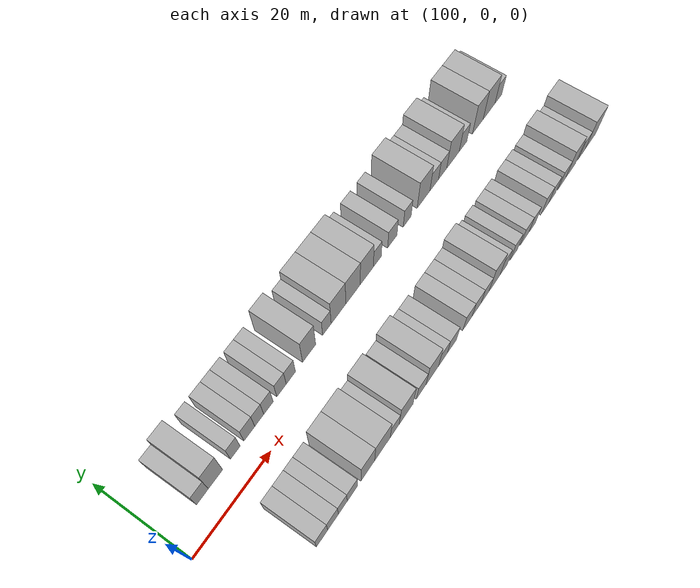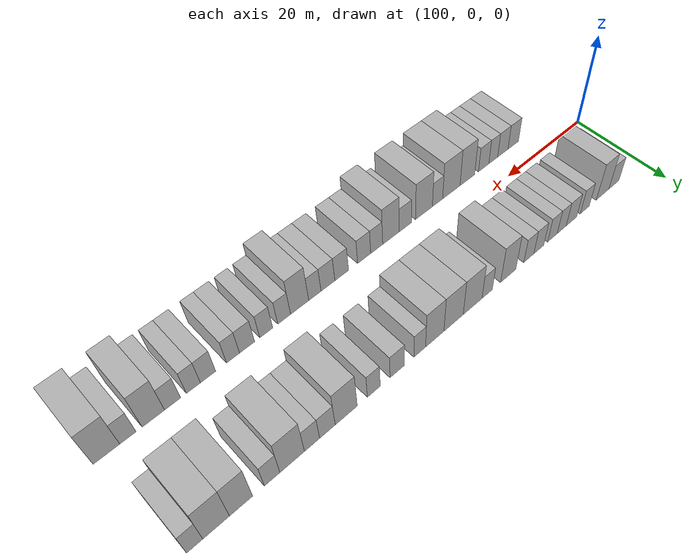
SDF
<sdf version="1.6">
 <world name="default">
  <model name="building_26">
   <static>1</static>
   <pose>108.1877 9.5000 0 0.000000 0.000000 1.570796</pose>
   <link name="link">
    <pose>0 0 3.00 0 0 0</pose>
    <collision name="collision"><geometry><box><size>10.0000 2.9506 6.0000</size></box></geometry></collision>
    <visual name="visual">
     <cast_shadows>0</cast_shadows>
     <geometry><box><size>10.0000 2.9506 6.0000</size></box></geometry>
     <material>
      <script>
       <uri>model://HANNAS_wall/materials/scripts</uri>
       <uri>model://HANNAS_wall/materials/textures</uri>
       <name>vrc/HANNAS_wall</name>
      </script>
     </material>
    </visual>
   </link>
  </model>
  <model name="building_27">
   <static>1</static>
   <pose>111.4786 9.5000 0 0.000000 0.000000 1.570796</pose>
   <link name="link">
    <pose>0 0 4.50 0 0 0</pose>
    <collision name="collision"><geometry><box><size>10.0000 3.6313 9.0000</size></box></geometry></collision>
    <visual name="visual">
     <cast_shadows>0</cast_shadows>
     <geometry><box><size>10.0000 3.6313 9.0000</size></box></geometry>
     <material>
      <script>
       <uri>model://HANNAS_wall/materials/scripts</uri>
       <uri>model://HANNAS_wall/materials/textures</uri>
       <name>vrc/HANNAS_wall</name>
      </script>
     </material>
    </visual>
   </link>
  </model>
  <model name="building_28">
   <static>1</static>
   <pose>116.5506 9.5000 0 0.000000 0.000000 1.570796</pose>
   <link name="link">
    <pose>0 0 3.00 0 0 0</pose>
    <collision name="collision"><geometry><box><size>10.0000 2.5127 6.0000</size></box></geometry></collision>
    <visual name="visual">
     <cast_shadows>0</cast_shadows>
     <geometry><box><size>10.0000 2.5127 6.0000</size></box></geometry>
     <material>
      <script>
       <uri>model://HANNAS_wall/materials/scripts</uri>
       <uri>model://HANNAS_wall/materials/textures</uri>
       <name>vrc/HANNAS_wall</name>
      </script>
     </material>
    </visual>
   </link>
  </model>
  <model name="building_29">
   <static>1</static>
   <pose>120.2438 9.5000 0 0.000000 0.000000 1.570796</pose>
   <link name="link">
    <pose>0 0 3.00 0 0 0</pose>
    <collision name="collision"><geometry><box><size>10.0000 2.8737 6.0000</size></box></geometry></collision>
    <visual name="visual">
     <cast_shadows>0</cast_shadows>
     <geometry><box><size>10.0000 2.8737 6.0000</size></box></geometry>
     <material>
      <script>
       <uri>model://HANNAS_wall/materials/scripts</uri>
       <uri>model://HANNAS_wall/materials/textures</uri>
       <name>vrc/HANNAS_wall</name>
      </script>
     </material>
    </visual>
   </link>
  </model>
  <model name="building_30">
   <static>1</static>
   <pose>122.8821 9.5000 0 0.000000 0.000000 1.570796</pose>
   <link name="link">
    <pose>0 0 3.00 0 0 0</pose>
    <collision name="collision"><geometry><box><size>10.0000 2.4031 6.0000</size></box></geometry></collision>
    <visual name="visual">
     <cast_shadows>0</cast_shadows>
     <geometry><box><size>10.0000 2.4031 6.0000</size></box></geometry>
     <material>
      <script>
       <uri>model://HANNAS_wall/materials/scripts</uri>
       <uri>model://HANNAS_wall/materials/textures</uri>
       <name>vrc/HANNAS_wall</name>
      </script>
     </material>
    </visual>
   </link>
  </model>
  <model name="building_31">
   <static>1</static>
   <pose>125.3592 9.5000 0 0.000000 0.000000 1.570796</pose>
   <link name="link">
    <pose>0 0 3.00 0 0 0</pose>
    <collision name="collision"><geometry><box><size>10.0000 2.5511 6.0000</size></box></geometry></collision>
    <visual name="visual">
     <cast_shadows>0</cast_shadows>
     <geometry><box><size>10.0000 2.5511 6.0000</size></box></geometry>
     <material>
      <script>
       <uri>model://HANNAS_wall/materials/scripts</uri>
       <uri>model://HANNAS_wall/materials/textures</uri>
       <name>vrc/HANNAS_wall</name>
      </script>
     </material>
    </visual>
   </link>
  </model>
  <model name="building_32">
   <static>1</static>
   <pose>128.9268 9.5000 0 0.000000 0.000000 1.570796</pose>
   <link name="link">
    <pose>0 0 3.00 0 0 0</pose>
    <collision name="collision"><geometry><box><size>10.0000 2.5841 6.0000</size></box></geometry></collision>
    <visual name="visual">
     <cast_shadows>0</cast_shadows>
     <geometry><box><size>10.0000 2.5841 6.0000</size></box></geometry>
     <material>
      <script>
       <uri>model://HANNAS_wall/materials/scripts</uri>
       <uri>model://HANNAS_wall/materials/textures</uri>
       <name>vrc/HANNAS_wall</name>
      </script>
     </material>
    </visual>
   </link>
  </model>
  <model name="building_33">
   <static>1</static>
   <pose>131.5073 9.5000 0 0.000000 0.000000 1.570796</pose>
   <link name="link">
    <pose>0 0 3.00 0 0 0</pose>
    <collision name="collision"><geometry><box><size>10.0000 2.5769 6.0000</size></box></geometry></collision>
    <visual name="visual">
     <cast_shadows>0</cast_shadows>
     <geometry><box><size>10.0000 2.5769 6.0000</size></box></geometry>
     <material>
      <script>
       <uri>model://HANNAS_wall/materials/scripts</uri>
       <uri>model://HANNAS_wall/materials/textures</uri>
       <name>vrc/HANNAS_wall</name>
      </script>
     </material>
    </visual>
   </link>
  </model>
  <model name="building_34">
   <static>1</static>
   <pose>136.6726 9.5000 0 0.000000 0.000000 1.570796</pose>
   <link name="link">
    <pose>0 0 4.50 0 0 0</pose>
    <collision name="collision"><geometry><box><size>10.0000 3.7537 9.0000</size></box></geometry></collision>
    <visual name="visual">
     <cast_shadows>0</cast_shadows>
     <geometry><box><size>10.0000 3.7537 9.0000</size></box></geometry>
     <material>
      <script>
       <uri>model://HANNAS_wall/materials/scripts</uri>
       <uri>model://HANNAS_wall/materials/textures</uri>
       <name>vrc/HANNAS_wall</name>
      </script>
     </material>
    </visual>
   </link>
  </model>
  <model name="building_35">
   <static>1</static>
   <pose>141.7903 9.5000 0 0.000000 0.000000 1.570796</pose>
   <link name="link">
    <pose>0 0 3.00 0 0 0</pose>
    <collision name="collision"><geometry><box><size>10.0000 2.4817 6.0000</size></box></geometry></collision>
    <visual name="visual">
     <cast_shadows>0</cast_shadows>
     <geometry><box><size>10.0000 2.4817 6.0000</size></box></geometry>
     <material>
      <script>
       <uri>model://HANNAS_wall/materials/scripts</uri>
       <uri>model://HANNAS_wall/materials/textures</uri>
       <name>vrc/HANNAS_wall</name>
      </script>
     </material>
    </visual>
   </link>
  </model>
  <model name="building_36">
   <static>1</static>
   <pose>145.2132 9.5000 0 0.000000 0.000000 1.570796</pose>
   <link name="link">
    <pose>0 0 4.50 0 0 0</pose>
    <collision name="collision"><geometry><box><size>10.0000 4.3640 9.0000</size></box></geometry></collision>
    <visual name="visual">
     <cast_shadows>0</cast_shadows>
     <geometry><box><size>10.0000 4.3640 9.0000</size></box></geometry>
     <material>
      <script>
       <uri>model://HANNAS_wall/materials/scripts</uri>
       <uri>model://HANNAS_wall/materials/textures</uri>
       <name>vrc/HANNAS_wall</name>
      </script>
     </material>
    </visual>
   </link>
  </model>
  <model name="building_37">
   <static>1</static>
   <pose>149.5837 9.5000 0 0.000000 0.000000 1.570796</pose>
   <link name="link">
    <pose>0 0 4.50 0 0 0</pose>
    <collision name="collision"><geometry><box><size>10.0000 4.3769 9.0000</size></box></geometry></collision>
    <visual name="visual">
     <cast_shadows>0</cast_shadows>
     <geometry><box><size>10.0000 4.3769 9.0000</size></box></geometry>
     <material>
      <script>
       <uri>model://HANNAS_wall/materials/scripts</uri>
       <uri>model://HANNAS_wall/materials/textures</uri>
       <name>vrc/HANNAS_wall</name>
      </script>
     </material>
    </visual>
   </link>
  </model>
  <model name="building_38">
   <static>1</static>
   <pose>153.7877 9.5000 0 0.000000 0.000000 1.570796</pose>
   <link name="link">
    <pose>0 0 4.50 0 0 0</pose>
    <collision name="collision"><geometry><box><size>10.0000 4.0313 9.0000</size></box></geometry></collision>
    <visual name="visual">
     <cast_shadows>0</cast_shadows>
     <geometry><box><size>10.0000 4.0313 9.0000</size></box></geometry>
     <material>
      <script>
       <uri>model://HANNAS_wall/materials/scripts</uri>
       <uri>model://HANNAS_wall/materials/textures</uri>
       <name>vrc/HANNAS_wall</name>
      </script>
     </material>
    </visual>
   </link>
  </model>
  <model name="building_39">
   <static>1</static>
   <pose>157.0514 9.5000 0 0.000000 0.000000 1.570796</pose>
   <link name="link">
    <pose>0 0 3.00 0 0 0</pose>
    <collision name="collision"><geometry><box><size>10.0000 2.4960 6.0000</size></box></geometry></collision>
    <visual name="visual">
     <cast_shadows>0</cast_shadows>
     <geometry><box><size>10.0000 2.4960 6.0000</size></box></geometry>
     <material>
      <script>
       <uri>model://HANNAS_wall/materials/scripts</uri>
       <uri>model://HANNAS_wall/materials/textures</uri>
       <name>vrc/HANNAS_wall</name>
      </script>
     </material>
    </visual>
   </link>
  </model>
  <model name="building_40">
   <static>1</static>
   <pose>161.7972 9.5000 0 0.000000 0.000000 1.570796</pose>
   <link name="link">
    <pose>0 0 3.00 0 0 0</pose>
    <collision name="collision"><geometry><box><size>10.0000 2.9956 6.0000</size></box></geometry></collision>
    <visual name="visual">
     <cast_shadows>0</cast_shadows>
     <geometry><box><size>10.0000 2.9956 6.0000</size></box></geometry>
     <material>
      <script>
       <uri>model://HANNAS_wall/materials/scripts</uri>
       <uri>model://HANNAS_wall/materials/textures</uri>
       <name>vrc/HANNAS_wall</name>
      </script>
     </material>
    </visual>
   </link>
  </model>
  <model name="building_41">
   <static>1</static>
   <pose>166.5899 9.5000 0 0.000000 0.000000 1.570796</pose>
   <link name="link">
    <pose>0 0 3.00 0 0 0</pose>
    <collision name="collision"><geometry><box><size>10.0000 2.5899 6.0000</size></box></geometry></collision>
    <visual name="visual">
     <cast_shadows>0</cast_shadows>
     <geometry><box><size>10.0000 2.5899 6.0000</size></box></geometry>
     <material>
      <script>
       <uri>model://HANNAS_wall/materials/scripts</uri>
       <uri>model://HANNAS_wall/materials/textures</uri>
       <name>vrc/HANNAS_wall</name>
      </script>
     </material>
    </visual>
   </link>
  </model>
  <model name="building_42">
   <static>1</static>
   <pose>172.0079 9.5000 0 0.000000 0.000000 1.570796</pose>
   <link name="link">
    <pose>0 0 4.50 0 0 0</pose>
    <collision name="collision"><geometry><box><size>10.0000 4.2462 9.0000</size></box></geometry></collision>
    <visual name="visual">
     <cast_shadows>0</cast_shadows>
     <geometry><box><size>10.0000 4.2462 9.0000</size></box></geometry>
     <material>
      <script>
       <uri>model://HANNAS_wall/materials/scripts</uri>
       <uri>model://HANNAS_wall/materials/textures</uri>
       <name>vrc/HANNAS_wall</name>
      </script>
     </material>
    </visual>
   </link>
  </model>
  <model name="building_43">
   <static>1</static>
   <pose>175.5984 9.5000 0 0.000000 0.000000 1.570796</pose>
   <link name="link">
    <pose>0 0 3.00 0 0 0</pose>
    <collision name="collision"><geometry><box><size>10.0000 2.9347 6.0000</size></box></geometry></collision>
    <visual name="visual">
     <cast_shadows>0</cast_shadows>
     <geometry><box><size>10.0000 2.9347 6.0000</size></box></geometry>
     <material>
      <script>
       <uri>model://HANNAS_wall/materials/scripts</uri>
       <uri>model://HANNAS_wall/materials/textures</uri>
       <name>vrc/HANNAS_wall</name>
      </script>
     </material>
    </visual>
   </link>
  </model>
  <model name="building_44">
   <static>1</static>
   <pose>178.4628 9.5000 0 0.000000 0.000000 1.570796</pose>
   <link name="link">
    <pose>0 0 3.00 0 0 0</pose>
    <collision name="collision"><geometry><box><size>10.0000 2.7942 6.0000</size></box></geometry></collision>
    <visual name="visual">
     <cast_shadows>0</cast_shadows>
     <geometry><box><size>10.0000 2.7942 6.0000</size></box></geometry>
     <material>
      <script>
       <uri>model://HANNAS_wall/materials/scripts</uri>
       <uri>model://HANNAS_wall/materials/textures</uri>
       <name>vrc/HANNAS_wall</name>
      </script>
     </material>
    </visual>
   </link>
  </model>
  <model name="building_45">
   <static>1</static>
   <pose>182.0575 9.5000 0 0.000000 0.000000 1.570796</pose>
   <link name="link">
    <pose>0 0 4.50 0 0 0</pose>
    <collision name="collision"><geometry><box><size>10.0000 4.3950 9.0000</size></box></geometry></collision>
    <visual name="visual">
     <cast_shadows>0</cast_shadows>
     <geometry><box><size>10.0000 4.3950 9.0000</size></box></geometry>
     <material>
      <script>
       <uri>model://HANNAS_wall/materials/scripts</uri>
       <uri>model://HANNAS_wall/materials/textures</uri>
       <name>vrc/HANNAS_wall</name>
      </script>
     </material>
    </visual>
   </link>
  </model>
  <model name="building_46">
   <static>1</static>
   <pose>185.6073 9.5000 0 0.000000 0.000000 1.570796</pose>
   <link name="link">
    <pose>0 0 3.00 0 0 0</pose>
    <collision name="collision"><geometry><box><size>10.0000 2.7046 6.0000</size></box></geometry></collision>
    <visual name="visual">
     <cast_shadows>0</cast_shadows>
     <geometry><box><size>10.0000 2.7046 6.0000</size></box></geometry>
     <material>
      <script>
       <uri>model://HANNAS_wall/materials/scripts</uri>
       <uri>model://HANNAS_wall/materials/textures</uri>
       <name>vrc/HANNAS_wall</name>
      </script>
     </material>
    </visual>
   </link>
  </model>
  <model name="building_47">
   <static>1</static>
   <pose>190.8958 9.5000 0 0.000000 0.000000 1.570796</pose>
   <link name="link">
    <pose>0 0 4.50 0 0 0</pose>
    <collision name="collision"><geometry><box><size>10.0000 3.8725 9.0000</size></box></geometry></collision>
    <visual name="visual">
     <cast_shadows>0</cast_shadows>
     <geometry><box><size>10.0000 3.8725 9.0000</size></box></geometry>
     <material>
      <script>
       <uri>model://HANNAS_wall/materials/scripts</uri>
       <uri>model://HANNAS_wall/materials/textures</uri>
       <name>vrc/HANNAS_wall</name>
      </script>
     </material>
    </visual>
   </link>
  </model>
  <model name="building_48">
   <static>1</static>
   <pose>194.9881 9.5000 0 0.000000 0.000000 1.570796</pose>
   <link name="link">
    <pose>0 0 4.50 0 0 0</pose>
    <collision name="collision"><geometry><box><size>10.0000 4.3121 9.0000</size></box></geometry></collision>
    <visual name="visual">
     <cast_shadows>0</cast_shadows>
     <geometry><box><size>10.0000 4.3121 9.0000</size></box></geometry>
     <material>
      <script>
       <uri>model://HANNAS_wall/materials/scripts</uri>
       <uri>model://HANNAS_wall/materials/textures</uri>
       <name>vrc/HANNAS_wall</name>
      </script>
     </material>
    </visual>
   </link>
  </model>
  <model name="building_49">
   <static>1</static>
   <pose>198.4301 9.5000 0 0.000000 0.000000 1.570796</pose>
   <link name="link">
    <pose>0 0 3.00 0 0 0</pose>
    <collision name="collision"><geometry><box><size>10.0000 2.5718 6.0000</size></box></geometry></collision>
    <visual name="visual">
     <cast_shadows>0</cast_shadows>
     <geometry><box><size>10.0000 2.5718 6.0000</size></box></geometry>
     <material>
      <script>
       <uri>model://HANNAS_wall/materials/scripts</uri>
       <uri>model://HANNAS_wall/materials/textures</uri>
       <name>vrc/HANNAS_wall</name>
      </script>
     </material>
    </visual>
   </link>
  </model>
  <model name="building_75">
   <static>1</static>
   <pose>113.6117 -9.5000 0 0.000000 0.000000 1.570796</pose>
   <link name="link">
    <pose>0 0 3.00 0 0 0</pose>
    <collision name="collision"><geometry><box><size>10.0000 2.9643 6.0000</size></box></geometry></collision>
    <visual name="visual">
     <cast_shadows>0</cast_shadows>
     <geometry><box><size>10.0000 2.9643 6.0000</size></box></geometry>
     <material>
      <script>
       <uri>model://HANNAS_wall/materials/scripts</uri>
       <uri>model://HANNAS_wall/materials/textures</uri>
       <name>vrc/HANNAS_wall</name>
      </script>
     </material>
    </visual>
   </link>
  </model>
  <model name="building_76">
   <static>1</static>
   <pose>116.5200 -9.5000 0 0.000000 0.000000 1.570796</pose>
   <link name="link">
    <pose>0 0 3.00 0 0 0</pose>
    <collision name="collision"><geometry><box><size>10.0000 2.8525 6.0000</size></box></geometry></collision>
    <visual name="visual">
     <cast_shadows>0</cast_shadows>
     <geometry><box><size>10.0000 2.8525 6.0000</size></box></geometry>
     <material>
      <script>
       <uri>model://HANNAS_wall/materials/scripts</uri>
       <uri>model://HANNAS_wall/materials/textures</uri>
       <name>vrc/HANNAS_wall</name>
      </script>
     </material>
    </visual>
   </link>
  </model>
  <model name="building_77">
   <static>1</static>
   <pose>119.1470 -9.5000 0 0.000000 0.000000 1.570796</pose>
   <link name="link">
    <pose>0 0 3.00 0 0 0</pose>
    <collision name="collision"><geometry><box><size>10.0000 2.4015 6.0000</size></box></geometry></collision>
    <visual name="visual">
     <cast_shadows>0</cast_shadows>
     <geometry><box><size>10.0000 2.4015 6.0000</size></box></geometry>
     <material>
      <script>
       <uri>model://HANNAS_wall/materials/scripts</uri>
       <uri>model://HANNAS_wall/materials/textures</uri>
       <name>vrc/HANNAS_wall</name>
      </script>
     </material>
    </visual>
   </link>
  </model>
  <model name="building_78">
   <static>1</static>
   <pose>121.7431 -9.5000 0 0.000000 0.000000 1.570796</pose>
   <link name="link">
    <pose>0 0 3.00 0 0 0</pose>
    <collision name="collision"><geometry><box><size>10.0000 2.7906 6.0000</size></box></geometry></collision>
    <visual name="visual">
     <cast_shadows>0</cast_shadows>
     <geometry><box><size>10.0000 2.7906 6.0000</size></box></geometry>
     <material>
      <script>
       <uri>model://HANNAS_wall/materials/scripts</uri>
       <uri>model://HANNAS_wall/materials/textures</uri>
       <name>vrc/HANNAS_wall</name>
      </script>
     </material>
    </visual>
   </link>
  </model>
  <model name="building_79">
   <static>1</static>
   <pose>126.0620 -9.5000 0 0.000000 0.000000 1.570796</pose>
   <link name="link">
    <pose>0 0 4.50 0 0 0</pose>
    <collision name="collision"><geometry><box><size>10.0000 3.8471 9.0000</size></box></geometry></collision>
    <visual name="visual">
     <cast_shadows>0</cast_shadows>
     <geometry><box><size>10.0000 3.8471 9.0000</size></box></geometry>
     <material>
      <script>
       <uri>model://HANNAS_wall/materials/scripts</uri>
       <uri>model://HANNAS_wall/materials/textures</uri>
       <name>vrc/HANNAS_wall</name>
      </script>
     </material>
    </visual>
   </link>
  </model>
  <model name="building_80">
   <static>1</static>
   <pose>130.2135 -9.5000 0 0.000000 0.000000 1.570796</pose>
   <link name="link">
    <pose>0 0 4.50 0 0 0</pose>
    <collision name="collision"><geometry><box><size>10.0000 4.4560 9.0000</size></box></geometry></collision>
    <visual name="visual">
     <cast_shadows>0</cast_shadows>
     <geometry><box><size>10.0000 4.4560 9.0000</size></box></geometry>
     <material>
      <script>
       <uri>model://HANNAS_wall/materials/scripts</uri>
       <uri>model://HANNAS_wall/materials/textures</uri>
       <name>vrc/HANNAS_wall</name>
      </script>
     </material>
    </visual>
   </link>
  </model>
  <model name="building_81">
   <static>1</static>
   <pose>133.7249 -9.5000 0 0.000000 0.000000 1.570796</pose>
   <link name="link">
    <pose>0 0 3.00 0 0 0</pose>
    <collision name="collision"><geometry><box><size>10.0000 2.5666 6.0000</size></box></geometry></collision>
    <visual name="visual">
     <cast_shadows>0</cast_shadows>
     <geometry><box><size>10.0000 2.5666 6.0000</size></box></geometry>
     <material>
      <script>
       <uri>model://HANNAS_wall/materials/scripts</uri>
       <uri>model://HANNAS_wall/materials/textures</uri>
       <name>vrc/HANNAS_wall</name>
      </script>
     </material>
    </visual>
   </link>
  </model>
  <model name="building_82">
   <static>1</static>
   <pose>137.0858 -9.5000 0 0.000000 0.000000 1.570796</pose>
   <link name="link">
    <pose>0 0 4.50 0 0 0</pose>
    <collision name="collision"><geometry><box><size>10.0000 4.1553 9.0000</size></box></geometry></collision>
    <visual name="visual">
     <cast_shadows>0</cast_shadows>
     <geometry><box><size>10.0000 4.1553 9.0000</size></box></geometry>
     <material>
      <script>
       <uri>model://HANNAS_wall/materials/scripts</uri>
       <uri>model://HANNAS_wall/materials/textures</uri>
       <name>vrc/HANNAS_wall</name>
      </script>
     </material>
    </visual>
   </link>
  </model>
  <model name="building_83">
   <static>1</static>
   <pose>141.6044 -9.5000 0 0.000000 0.000000 1.570796</pose>
   <link name="link">
    <pose>0 0 3.00 0 0 0</pose>
    <collision name="collision"><geometry><box><size>10.0000 2.8819 6.0000</size></box></geometry></collision>
    <visual name="visual">
     <cast_shadows>0</cast_shadows>
     <geometry><box><size>10.0000 2.8819 6.0000</size></box></geometry>
     <material>
      <script>
       <uri>model://HANNAS_wall/materials/scripts</uri>
       <uri>model://HANNAS_wall/materials/textures</uri>
       <name>vrc/HANNAS_wall</name>
      </script>
     </material>
    </visual>
   </link>
  </model>
  <model name="building_84">
   <static>1</static>
   <pose>144.9822 -9.5000 0 0.000000 0.000000 1.570796</pose>
   <link name="link">
    <pose>0 0 4.50 0 0 0</pose>
    <collision name="collision"><geometry><box><size>10.0000 3.8738 9.0000</size></box></geometry></collision>
    <visual name="visual">
     <cast_shadows>0</cast_shadows>
     <geometry><box><size>10.0000 3.8738 9.0000</size></box></geometry>
     <material>
      <script>
       <uri>model://HANNAS_wall/materials/scripts</uri>
       <uri>model://HANNAS_wall/materials/textures</uri>
       <name>vrc/HANNAS_wall</name>
      </script>
     </material>
    </visual>
   </link>
  </model>
  <model name="building_85">
   <static>1</static>
   <pose>148.2913 -9.5000 0 0.000000 0.000000 1.570796</pose>
   <link name="link">
    <pose>0 0 3.00 0 0 0</pose>
    <collision name="collision"><geometry><box><size>10.0000 2.7444 6.0000</size></box></geometry></collision>
    <visual name="visual">
     <cast_shadows>0</cast_shadows>
     <geometry><box><size>10.0000 2.7444 6.0000</size></box></geometry>
     <material>
      <script>
       <uri>model://HANNAS_wall/materials/scripts</uri>
       <uri>model://HANNAS_wall/materials/textures</uri>
       <name>vrc/HANNAS_wall</name>
      </script>
     </material>
    </visual>
   </link>
  </model>
  <model name="building_86">
   <static>1</static>
   <pose>151.1319 -9.5000 0 0.000000 0.000000 1.570796</pose>
   <link name="link">
    <pose>0 0 3.00 0 0 0</pose>
    <collision name="collision"><geometry><box><size>10.0000 2.9368 6.0000</size></box></geometry></collision>
    <visual name="visual">
     <cast_shadows>0</cast_shadows>
     <geometry><box><size>10.0000 2.9368 6.0000</size></box></geometry>
     <material>
      <script>
       <uri>model://HANNAS_wall/materials/scripts</uri>
       <uri>model://HANNAS_wall/materials/textures</uri>
       <name>vrc/HANNAS_wall</name>
      </script>
     </material>
    </visual>
   </link>
  </model>
  <model name="building_87">
   <static>1</static>
   <pose>156.0886 -9.5000 0 0.000000 0.000000 1.570796</pose>
   <link name="link">
    <pose>0 0 3.00 0 0 0</pose>
    <collision name="collision"><geometry><box><size>10.0000 2.9765 6.0000</size></box></geometry></collision>
    <visual name="visual">
     <cast_shadows>0</cast_shadows>
     <geometry><box><size>10.0000 2.9765 6.0000</size></box></geometry>
     <material>
      <script>
       <uri>model://HANNAS_wall/materials/scripts</uri>
       <uri>model://HANNAS_wall/materials/textures</uri>
       <name>vrc/HANNAS_wall</name>
      </script>
     </material>
    </visual>
   </link>
  </model>
  <model name="building_88">
   <static>1</static>
   <pose>159.0539 -9.5000 0 0.000000 0.000000 1.570796</pose>
   <link name="link">
    <pose>0 0 3.00 0 0 0</pose>
    <collision name="collision"><geometry><box><size>10.0000 2.9542 6.0000</size></box></geometry></collision>
    <visual name="visual">
     <cast_shadows>0</cast_shadows>
     <geometry><box><size>10.0000 2.9542 6.0000</size></box></geometry>
     <material>
      <script>
       <uri>model://HANNAS_wall/materials/scripts</uri>
       <uri>model://HANNAS_wall/materials/textures</uri>
       <name>vrc/HANNAS_wall</name>
      </script>
     </material>
    </visual>
   </link>
  </model>
  <model name="building_89">
   <static>1</static>
   <pose>161.8200 -9.5000 0 0.000000 0.000000 1.570796</pose>
   <link name="link">
    <pose>0 0 3.00 0 0 0</pose>
    <collision name="collision"><geometry><box><size>10.0000 2.5778 6.0000</size></box></geometry></collision>
    <visual name="visual">
     <cast_shadows>0</cast_shadows>
     <geometry><box><size>10.0000 2.5778 6.0000</size></box></geometry>
     <material>
      <script>
       <uri>model://HANNAS_wall/materials/scripts</uri>
       <uri>model://HANNAS_wall/materials/textures</uri>
       <name>vrc/HANNAS_wall</name>
      </script>
     </material>
    </visual>
   </link>
  </model>
  <model name="building_90">
   <static>1</static>
   <pose>164.9733 -9.5000 0 0.000000 0.000000 1.570796</pose>
   <link name="link">
    <pose>0 0 4.50 0 0 0</pose>
    <collision name="collision"><geometry><box><size>10.0000 3.7288 9.0000</size></box></geometry></collision>
    <visual name="visual">
     <cast_shadows>0</cast_shadows>
     <geometry><box><size>10.0000 3.7288 9.0000</size></box></geometry>
     <material>
      <script>
       <uri>model://HANNAS_wall/materials/scripts</uri>
       <uri>model://HANNAS_wall/materials/textures</uri>
       <name>vrc/HANNAS_wall</name>
      </script>
     </material>
    </visual>
   </link>
  </model>
  <model name="building_91">
   <static>1</static>
   <pose>168.1265 -9.5000 0 0.000000 0.000000 1.570796</pose>
   <link name="link">
    <pose>0 0 3.00 0 0 0</pose>
    <collision name="collision"><geometry><box><size>10.0000 2.5776 6.0000</size></box></geometry></collision>
    <visual name="visual">
     <cast_shadows>0</cast_shadows>
     <geometry><box><size>10.0000 2.5776 6.0000</size></box></geometry>
     <material>
      <script>
       <uri>model://HANNAS_wall/materials/scripts</uri>
       <uri>model://HANNAS_wall/materials/textures</uri>
       <name>vrc/HANNAS_wall</name>
      </script>
     </material>
    </visual>
   </link>
  </model>
  <model name="building_92">
   <static>1</static>
   <pose>171.6854 -9.5000 0 0.000000 0.000000 1.570796</pose>
   <link name="link">
    <pose>0 0 3.00 0 0 0</pose>
    <collision name="collision"><geometry><box><size>10.0000 2.5404 6.0000</size></box></geometry></collision>
    <visual name="visual">
     <cast_shadows>0</cast_shadows>
     <geometry><box><size>10.0000 2.5404 6.0000</size></box></geometry>
     <material>
      <script>
       <uri>model://HANNAS_wall/materials/scripts</uri>
       <uri>model://HANNAS_wall/materials/textures</uri>
       <name>vrc/HANNAS_wall</name>
      </script>
     </material>
    </visual>
   </link>
  </model>
  <model name="building_93">
   <static>1</static>
   <pose>175.3958 -9.5000 0 0.000000 0.000000 1.570796</pose>
   <link name="link">
    <pose>0 0 3.00 0 0 0</pose>
    <collision name="collision"><geometry><box><size>10.0000 2.8803 6.0000</size></box></geometry></collision>
    <visual name="visual">
     <cast_shadows>0</cast_shadows>
     <geometry><box><size>10.0000 2.8803 6.0000</size></box></geometry>
     <material>
      <script>
       <uri>model://HANNAS_wall/materials/scripts</uri>
       <uri>model://HANNAS_wall/materials/textures</uri>
       <name>vrc/HANNAS_wall</name>
      </script>
     </material>
    </visual>
   </link>
  </model>
  <model name="building_94">
   <static>1</static>
   <pose>178.0597 -9.5000 0 0.000000 0.000000 1.570796</pose>
   <link name="link">
    <pose>0 0 3.00 0 0 0</pose>
    <collision name="collision"><geometry><box><size>10.0000 2.4475 6.0000</size></box></geometry></collision>
    <visual name="visual">
     <cast_shadows>0</cast_shadows>
     <geometry><box><size>10.0000 2.4475 6.0000</size></box></geometry>
     <material>
      <script>
       <uri>model://HANNAS_wall/materials/scripts</uri>
       <uri>model://HANNAS_wall/materials/textures</uri>
       <name>vrc/HANNAS_wall</name>
      </script>
     </material>
    </visual>
   </link>
  </model>
  <model name="building_95">
   <static>1</static>
   <pose>182.6700 -9.5000 0 0.000000 0.000000 1.570796</pose>
   <link name="link">
    <pose>0 0 3.00 0 0 0</pose>
    <collision name="collision"><geometry><box><size>10.0000 2.7730 6.0000</size></box></geometry></collision>
    <visual name="visual">
     <cast_shadows>0</cast_shadows>
     <geometry><box><size>10.0000 2.7730 6.0000</size></box></geometry>
     <material>
      <script>
       <uri>model://HANNAS_wall/materials/scripts</uri>
       <uri>model://HANNAS_wall/materials/textures</uri>
       <name>vrc/HANNAS_wall</name>
      </script>
     </material>
    </visual>
   </link>
  </model>
  <model name="building_96">
   <static>1</static>
   <pose>185.2993 -9.5000 0 0.000000 0.000000 1.570796</pose>
   <link name="link">
    <pose>0 0 3.00 0 0 0</pose>
    <collision name="collision"><geometry><box><size>10.0000 2.4857 6.0000</size></box></geometry></collision>
    <visual name="visual">
     <cast_shadows>0</cast_shadows>
     <geometry><box><size>10.0000 2.4857 6.0000</size></box></geometry>
     <material>
      <script>
       <uri>model://HANNAS_wall/materials/scripts</uri>
       <uri>model://HANNAS_wall/materials/textures</uri>
       <name>vrc/HANNAS_wall</name>
      </script>
     </material>
    </visual>
   </link>
  </model>
  <model name="building_97">
   <static>1</static>
   <pose>188.9445 -9.5000 0 0.000000 0.000000 1.570796</pose>
   <link name="link">
    <pose>0 0 3.00 0 0 0</pose>
    <collision name="collision"><geometry><box><size>10.0000 2.8047 6.0000</size></box></geometry></collision>
    <visual name="visual">
     <cast_shadows>0</cast_shadows>
     <geometry><box><size>10.0000 2.8047 6.0000</size></box></geometry>
     <material>
      <script>
       <uri>model://HANNAS_wall/materials/scripts</uri>
       <uri>model://HANNAS_wall/materials/textures</uri>
       <name>vrc/HANNAS_wall</name>
      </script>
     </material>
    </visual>
   </link>
  </model>
  <model name="building_98">
   <static>1</static>
   <pose>192.2502 -9.5000 0 0.000000 0.000000 1.570796</pose>
   <link name="link">
    <pose>0 0 4.50 0 0 0</pose>
    <collision name="collision"><geometry><box><size>10.0000 3.8067 9.0000</size></box></geometry></collision>
    <visual name="visual">
     <cast_shadows>0</cast_shadows>
     <geometry><box><size>10.0000 3.8067 9.0000</size></box></geometry>
     <material>
      <script>
       <uri>model://HANNAS_wall/materials/scripts</uri>
       <uri>model://HANNAS_wall/materials/textures</uri>
       <name>vrc/HANNAS_wall</name>
      </script>
     </material>
    </visual>
   </link>
  </model>
  <model name="building_99">
   <static>1</static>
   <pose>196.4912 -9.5000 0 0.000000 0.000000 1.570796</pose>
   <link name="link">
    <pose>0 0 3.00 0 0 0</pose>
    <collision name="collision"><geometry><box><size>10.0000 2.6754 6.0000</size></box></geometry></collision>
    <visual name="visual">
     <cast_shadows>0</cast_shadows>
     <geometry><box><size>10.0000 2.6754 6.0000</size></box></geometry>
     <material>
      <script>
       <uri>model://HANNAS_wall/materials/scripts</uri>
       <uri>model://HANNAS_wall/materials/textures</uri>
       <name>vrc/HANNAS_wall</name>
      </script>
     </material>
    </visual>
   </link>
  </model>
  <model name="building_100">
   <static>1</static>
   <pose>199.9636 -9.5000 0 0.000000 0.000000 1.570796</pose>
   <link name="link">
    <pose>0 0 4.50 0 0 0</pose>
    <collision name="collision"><geometry><box><size>10.0000 4.2695 9.0000</size></box></geometry></collision>
    <visual name="visual">
     <cast_shadows>0</cast_shadows>
     <geometry><box><size>10.0000 4.2695 9.0000</size></box></geometry>
     <material>
      <script>
       <uri>model://HANNAS_wall/materials/scripts</uri>
       <uri>model://HANNAS_wall/materials/textures</uri>
       <name>vrc/HANNAS_wall</name>
      </script>
     </material>
    </visual>
   </link>
  </model>
 </world>
</sdf>
